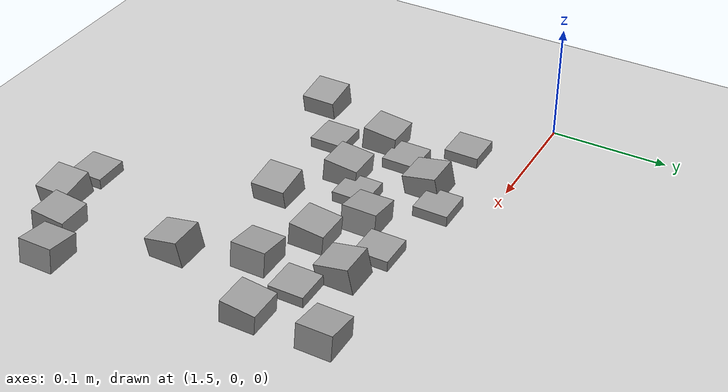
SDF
<sdf version="1.7">
 <world name="default">
  <model name="ground_plane">
   <static>1</static>
   <link name="link">
    <collision name="collision">
     <geometry><plane><normal>0 0 1</normal><size>100 100</size></plane></geometry>
     <surface><friction><ode><mu>100</mu><mu2>50</mu2></ode></friction></surface>
    </collision>
    <visual name="visual">
     <cast_shadows>0</cast_shadows>
     <geometry><plane><normal>0 0 1</normal><size>100 100</size></plane></geometry>
     <material>
      <script><uri>file://media/materials/scripts/gazebo.material</uri><name>Gazebo/Grey</name></script>
     </material>
    </visual>
   </link>
  </model>
  <model name="stone_road">
   <link name="link_0_clone_1">
    <inertial>
     <mass>1</mass>
     <inertia>
      <ixx>0.166667</ixx>
      <ixy>0</ixy>
      <ixz>0</ixz>
      <iyy>0.166667</iyy>
      <iyz>0</iyz>
      <izz>0.166667</izz>
     </inertia>
    </inertial>
    <pose>-0.022921 -0.129606 0.003778 0.2 -0 0</pose>
    <kinematic>1</kinematic>
    <visual name="visual">
     <geometry><box><size>0.03 0.03 0.03</size></box></geometry>
     <material>
      <lighting>1</lighting>
      <script><uri>file://media/materials/scripts/gazebo.material</uri><name>Gazebo/Grey</name></script>
      <shader type="pixel"><normal_map>__default__</normal_map></shader>
      <ambient>0.3 0.3 0.3 1</ambient>
      <diffuse>0.7 0.7 0.7 1</diffuse>
      <specular>0.01 0.01 0.01 1</specular>
      <emissive>0 0 0 1</emissive>
     </material>
    </visual>
    <collision name="collision">
     <geometry><box><size>0.03 0.03 0.03</size></box></geometry>
     <surface>
      <friction>
       <ode><mu>1</mu><mu2>1</mu2><fdir1>0 0 0</fdir1><slip1>0</slip1><slip2>0</slip2></ode>
       <torsional>
        <coefficient>1</coefficient>
        <patch_radius>0</patch_radius>
        <surface_radius>0</surface_radius>
        <use_patch_radius>1</use_patch_radius>
        <ode><slip>0</slip></ode>
       </torsional>
      </friction>
      <bounce><restitution_coefficient>0</restitution_coefficient><threshold>1e+06</threshold></bounce>
      <contact>
       <collide_without_contact>0</collide_without_contact>
       <collide_without_contact_bitmask>1</collide_without_contact_bitmask>
       <collide_bitmask>1</collide_bitmask>
       <ode>
        <soft_cfm>0</soft_cfm>
        <soft_erp>0.2</soft_erp>
        <kp>1e+13</kp>
        <kd>1</kd>
        <max_vel>0.01</max_vel>
        <min_depth>0</min_depth>
       </ode>
       <bullet>
        <split_impulse>1</split_impulse>
        <split_impulse_penetration_threshold>-0.01</split_impulse_penetration_threshold>
        <soft_cfm>0</soft_cfm>
        <soft_erp>0.2</soft_erp>
        <kp>1e+13</kp>
        <kd>1</kd>
       </bullet>
      </contact>
     </surface>
    </collision>
   </link>
   <link name="link_0_clone_12">
    <inertial>
     <mass>1</mass>
     <inertia>
      <ixx>0.166667</ixx>
      <ixy>0</ixy>
      <ixz>0</ixz>
      <iyy>0.166667</iyy>
      <iyz>0</iyz>
      <izz>0.166667</izz>
     </inertia>
    </inertial>
    <pose>0.142624 -0.262715 0.003778 0.2 -0 0</pose>
    <kinematic>1</kinematic>
    <visual name="visual">
     <geometry><box><size>0.03 0.03 0.03</size></box></geometry>
     <material>
      <lighting>1</lighting>
      <script><uri>file://media/materials/scripts/gazebo.material</uri><name>Gazebo/Grey</name></script>
      <shader type="pixel"><normal_map>__default__</normal_map></shader>
      <ambient>0.3 0.3 0.3 1</ambient>
      <diffuse>0.7 0.7 0.7 1</diffuse>
      <specular>0.01 0.01 0.01 1</specular>
      <emissive>0 0 0 1</emissive>
     </material>
    </visual>
    <collision name="collision">
     <geometry><box><size>0.03 0.03 0.03</size></box></geometry>
     <surface>
      <friction>
       <ode><mu>1</mu><mu2>1</mu2><fdir1>0 0 0</fdir1><slip1>0</slip1><slip2>0</slip2></ode>
       <torsional>
        <coefficient>1</coefficient>
        <patch_radius>0</patch_radius>
        <surface_radius>0</surface_radius>
        <use_patch_radius>1</use_patch_radius>
        <ode><slip>0</slip></ode>
       </torsional>
      </friction>
      <bounce><restitution_coefficient>0</restitution_coefficient><threshold>1e+06</threshold></bounce>
      <contact>
       <collide_without_contact>0</collide_without_contact>
       <collide_without_contact_bitmask>1</collide_without_contact_bitmask>
       <collide_bitmask>1</collide_bitmask>
       <ode>
        <soft_cfm>0</soft_cfm>
        <soft_erp>0.2</soft_erp>
        <kp>1e+13</kp>
        <kd>1</kd>
        <max_vel>0.01</max_vel>
        <min_depth>0</min_depth>
       </ode>
       <bullet>
        <split_impulse>1</split_impulse>
        <split_impulse_penetration_threshold>-0.01</split_impulse_penetration_threshold>
        <soft_cfm>0</soft_cfm>
        <soft_erp>0.2</soft_erp>
        <kp>1e+13</kp>
        <kd>1</kd>
       </bullet>
      </contact>
     </surface>
    </collision>
   </link>
   <link name="link_0_clone_13">
    <inertial>
     <mass>1</mass>
     <inertia>
      <ixx>0.166667</ixx>
      <ixy>0</ixy>
      <ixz>0</ixz>
      <iyy>0.166667</iyy>
      <iyz>0</iyz>
      <izz>0.166667</izz>
     </inertia>
    </inertial>
    <pose>0.107601 -0.134881 0.003778 0.2 -0 0</pose>
    <kinematic>1</kinematic>
    <visual name="visual">
     <geometry><box><size>0.03 0.03 0.03</size></box></geometry>
     <material>
      <lighting>1</lighting>
      <script><uri>file://media/materials/scripts/gazebo.material</uri><name>Gazebo/Grey</name></script>
      <shader type="pixel"><normal_map>__default__</normal_map></shader>
      <ambient>0.3 0.3 0.3 1</ambient>
      <diffuse>0.7 0.7 0.7 1</diffuse>
      <specular>0.01 0.01 0.01 1</specular>
      <emissive>0 0 0 1</emissive>
     </material>
    </visual>
    <collision name="collision">
     <geometry><box><size>0.03 0.03 0.03</size></box></geometry>
     <surface>
      <friction>
       <ode><mu>1</mu><mu2>1</mu2><fdir1>0 0 0</fdir1><slip1>0</slip1><slip2>0</slip2></ode>
       <torsional>
        <coefficient>1</coefficient>
        <patch_radius>0</patch_radius>
        <surface_radius>0</surface_radius>
        <use_patch_radius>1</use_patch_radius>
        <ode><slip>0</slip></ode>
       </torsional>
      </friction>
      <bounce><restitution_coefficient>0</restitution_coefficient><threshold>1e+06</threshold></bounce>
      <contact>
       <collide_without_contact>0</collide_without_contact>
       <collide_without_contact_bitmask>1</collide_without_contact_bitmask>
       <collide_bitmask>1</collide_bitmask>
       <ode>
        <soft_cfm>0</soft_cfm>
        <soft_erp>0.2</soft_erp>
        <kp>1e+13</kp>
        <kd>1</kd>
        <max_vel>0.01</max_vel>
        <min_depth>0</min_depth>
       </ode>
       <bullet>
        <split_impulse>1</split_impulse>
        <split_impulse_penetration_threshold>-0.01</split_impulse_penetration_threshold>
        <soft_cfm>0</soft_cfm>
        <soft_erp>0.2</soft_erp>
        <kp>1e+13</kp>
        <kd>1</kd>
       </bullet>
      </contact>
     </surface>
    </collision>
   </link>
   <link name="link_0_clone_2_clone_2_clone_13_clone_clone_10">
    <inertial>
     <mass>1</mass>
     <inertia>
      <ixx>0.166667</ixx>
      <ixy>0</ixy>
      <ixz>0</ixz>
      <iyy>0.166667</iyy>
      <iyz>0</iyz>
      <izz>0.166667</izz>
     </inertia>
    </inertial>
    <pose>-0.006825 -0.196489 0.003778 -0.1 0 0</pose>
    <kinematic>1</kinematic>
    <visual name="visual">
     <geometry><box><size>0.03 0.03 0.03</size></box></geometry>
     <material>
      <lighting>1</lighting>
      <script><uri>file://media/materials/scripts/gazebo.material</uri><name>Gazebo/Grey</name></script>
      <shader type="pixel"><normal_map>__default__</normal_map></shader>
      <ambient>0.3 0.3 0.3 1</ambient>
      <diffuse>0.7 0.7 0.7 1</diffuse>
      <specular>0.01 0.01 0.01 1</specular>
      <emissive>0 0 0 1</emissive>
     </material>
    </visual>
    <collision name="collision">
     <geometry><box><size>0.03 0.03 0.03</size></box></geometry>
     <surface>
      <friction>
       <ode><mu>1</mu><mu2>1</mu2><fdir1>0 0 0</fdir1><slip1>0</slip1><slip2>0</slip2></ode>
       <torsional>
        <coefficient>1</coefficient>
        <patch_radius>0</patch_radius>
        <surface_radius>0</surface_radius>
        <use_patch_radius>1</use_patch_radius>
        <ode><slip>0</slip></ode>
       </torsional>
      </friction>
      <bounce><restitution_coefficient>0</restitution_coefficient><threshold>1e+06</threshold></bounce>
      <contact>
       <collide_without_contact>0</collide_without_contact>
       <collide_without_contact_bitmask>1</collide_without_contact_bitmask>
       <collide_bitmask>1</collide_bitmask>
       <ode>
        <soft_cfm>0</soft_cfm>
        <soft_erp>0.2</soft_erp>
        <kp>1e+13</kp>
        <kd>1</kd>
        <max_vel>0.01</max_vel>
        <min_depth>0</min_depth>
       </ode>
       <bullet>
        <split_impulse>1</split_impulse>
        <split_impulse_penetration_threshold>-0.01</split_impulse_penetration_threshold>
        <soft_cfm>0</soft_cfm>
        <soft_erp>0.2</soft_erp>
        <kp>1e+13</kp>
        <kd>1</kd>
       </bullet>
      </contact>
     </surface>
    </collision>
   </link>
   <link name="link_0_clone_2_clone_2_clone_13_clone_clone_11">
    <inertial>
     <mass>1</mass>
     <inertia>
      <ixx>0.166667</ixx>
      <ixy>0</ixy>
      <ixz>0</ixz>
      <iyy>0.166667</iyy>
      <iyz>0</iyz>
      <izz>0.166667</izz>
     </inertia>
    </inertial>
    <pose>0.178889 -0.173779 0.003778 -0.1 0 0</pose>
    <kinematic>1</kinematic>
    <visual name="visual">
     <geometry><box><size>0.03 0.03 0.03</size></box></geometry>
     <material>
      <lighting>1</lighting>
      <script><uri>file://media/materials/scripts/gazebo.material</uri><name>Gazebo/Grey</name></script>
      <shader type="pixel"><normal_map>__default__</normal_map></shader>
      <ambient>0.3 0.3 0.3 1</ambient>
      <diffuse>0.7 0.7 0.7 1</diffuse>
      <specular>0.01 0.01 0.01 1</specular>
      <emissive>0 0 0 1</emissive>
     </material>
    </visual>
    <collision name="collision">
     <geometry><box><size>0.03 0.03 0.03</size></box></geometry>
     <surface>
      <friction>
       <ode><mu>1</mu><mu2>1</mu2><fdir1>0 0 0</fdir1><slip1>0</slip1><slip2>0</slip2></ode>
       <torsional>
        <coefficient>1</coefficient>
        <patch_radius>0</patch_radius>
        <surface_radius>0</surface_radius>
        <use_patch_radius>1</use_patch_radius>
        <ode><slip>0</slip></ode>
       </torsional>
      </friction>
      <bounce><restitution_coefficient>0</restitution_coefficient><threshold>1e+06</threshold></bounce>
      <contact>
       <collide_without_contact>0</collide_without_contact>
       <collide_without_contact_bitmask>1</collide_without_contact_bitmask>
       <collide_bitmask>1</collide_bitmask>
       <ode>
        <soft_cfm>0</soft_cfm>
        <soft_erp>0.2</soft_erp>
        <kp>1e+13</kp>
        <kd>1</kd>
        <max_vel>0.01</max_vel>
        <min_depth>0</min_depth>
       </ode>
       <bullet>
        <split_impulse>1</split_impulse>
        <split_impulse_penetration_threshold>-0.01</split_impulse_penetration_threshold>
        <soft_cfm>0</soft_cfm>
        <soft_erp>0.2</soft_erp>
        <kp>1e+13</kp>
        <kd>1</kd>
       </bullet>
      </contact>
     </surface>
    </collision>
   </link>
   <link name="link_0_clone_2_clone_2_clone_13_clone_clone_12">
    <inertial>
     <mass>1</mass>
     <inertia>
      <ixx>0.166667</ixx>
      <ixy>0</ixy>
      <ixz>0</ixz>
      <iyy>0.166667</iyy>
      <iyz>0</iyz>
      <izz>0.166667</izz>
     </inertia>
    </inertial>
    <pose>0.078701 -0.177208 0.003778 -0.1 0 0</pose>
    <kinematic>1</kinematic>
    <visual name="visual">
     <geometry><box><size>0.03 0.03 0.03</size></box></geometry>
     <material>
      <lighting>1</lighting>
      <script><uri>file://media/materials/scripts/gazebo.material</uri><name>Gazebo/Grey</name></script>
      <shader type="pixel"><normal_map>__default__</normal_map></shader>
      <ambient>0.3 0.3 0.3 1</ambient>
      <diffuse>0.7 0.7 0.7 1</diffuse>
      <specular>0.01 0.01 0.01 1</specular>
      <emissive>0 0 0 1</emissive>
     </material>
    </visual>
    <collision name="collision">
     <geometry><box><size>0.03 0.03 0.03</size></box></geometry>
     <surface>
      <friction>
       <ode><mu>1</mu><mu2>1</mu2><fdir1>0 0 0</fdir1><slip1>0</slip1><slip2>0</slip2></ode>
       <torsional>
        <coefficient>1</coefficient>
        <patch_radius>0</patch_radius>
        <surface_radius>0</surface_radius>
        <use_patch_radius>1</use_patch_radius>
        <ode><slip>0</slip></ode>
       </torsional>
      </friction>
      <bounce><restitution_coefficient>0</restitution_coefficient><threshold>1e+06</threshold></bounce>
      <contact>
       <collide_without_contact>0</collide_without_contact>
       <collide_without_contact_bitmask>1</collide_without_contact_bitmask>
       <collide_bitmask>1</collide_bitmask>
       <ode>
        <soft_cfm>0</soft_cfm>
        <soft_erp>0.2</soft_erp>
        <kp>1e+13</kp>
        <kd>1</kd>
        <max_vel>0.01</max_vel>
        <min_depth>0</min_depth>
       </ode>
       <bullet>
        <split_impulse>1</split_impulse>
        <split_impulse_penetration_threshold>-0.01</split_impulse_penetration_threshold>
        <soft_cfm>0</soft_cfm>
        <soft_erp>0.2</soft_erp>
        <kp>1e+13</kp>
        <kd>1</kd>
       </bullet>
      </contact>
     </surface>
    </collision>
   </link>
   <link name="link_0_clone_2_clone_2_clone_13_clone_clone_16_clone_16">
    <inertial>
     <mass>1</mass>
     <inertia>
      <ixx>0.166667</ixx>
      <ixy>0</ixy>
      <ixz>0</ixz>
      <iyy>0.166667</iyy>
      <iyz>0</iyz>
      <izz>0.166667</izz>
     </inertia>
    </inertial>
    <pose>0.071475 -0.124425 -0.006222 0 -0 0</pose>
    <kinematic>1</kinematic>
    <visual name="visual">
     <geometry><box><size>0.03 0.03 0.03</size></box></geometry>
     <material>
      <lighting>1</lighting>
      <script><uri>file://media/materials/scripts/gazebo.material</uri><name>Gazebo/Grey</name></script>
      <shader type="pixel"><normal_map>__default__</normal_map></shader>
      <ambient>0.3 0.3 0.3 1</ambient>
      <diffuse>0.7 0.7 0.7 1</diffuse>
      <specular>0.01 0.01 0.01 1</specular>
      <emissive>0 0 0 1</emissive>
     </material>
    </visual>
    <collision name="collision">
     <geometry><box><size>0.03 0.03 0.03</size></box></geometry>
     <surface>
      <friction>
       <ode><mu>1</mu><mu2>1</mu2><fdir1>0 0 0</fdir1><slip1>0</slip1><slip2>0</slip2></ode>
       <torsional>
        <coefficient>1</coefficient>
        <patch_radius>0</patch_radius>
        <surface_radius>0</surface_radius>
        <use_patch_radius>1</use_patch_radius>
        <ode><slip>0</slip></ode>
       </torsional>
      </friction>
      <bounce><restitution_coefficient>0</restitution_coefficient><threshold>1e+06</threshold></bounce>
      <contact>
       <collide_without_contact>0</collide_without_contact>
       <collide_without_contact_bitmask>1</collide_without_contact_bitmask>
       <collide_bitmask>1</collide_bitmask>
       <ode>
        <soft_cfm>0</soft_cfm>
        <soft_erp>0.2</soft_erp>
        <kp>1e+13</kp>
        <kd>1</kd>
        <max_vel>0.01</max_vel>
        <min_depth>0</min_depth>
       </ode>
       <bullet>
        <split_impulse>1</split_impulse>
        <split_impulse_penetration_threshold>-0.01</split_impulse_penetration_threshold>
        <soft_cfm>0</soft_cfm>
        <soft_erp>0.2</soft_erp>
        <kp>1e+13</kp>
        <kd>1</kd>
       </bullet>
      </contact>
     </surface>
    </collision>
   </link>
   <link name="link_0_clone_2_clone_2_clone_13_clone_clone_16_clone_17">
    <inertial>
     <mass>1</mass>
     <inertia>
      <ixx>0.166667</ixx>
      <ixy>0</ixy>
      <ixz>0</ixz>
      <iyy>0.166667</iyy>
      <iyz>0</iyz>
      <izz>0.166667</izz>
     </inertia>
    </inertial>
    <pose>0.014877 -0.175392 -0.006222 0 -0 0</pose>
    <kinematic>1</kinematic>
    <visual name="visual">
     <geometry><box><size>0.03 0.03 0.03</size></box></geometry>
     <material>
      <lighting>1</lighting>
      <script><uri>file://media/materials/scripts/gazebo.material</uri><name>Gazebo/Grey</name></script>
      <shader type="pixel"><normal_map>__default__</normal_map></shader>
      <ambient>0.3 0.3 0.3 1</ambient>
      <diffuse>0.7 0.7 0.7 1</diffuse>
      <specular>0.01 0.01 0.01 1</specular>
      <emissive>0 0 0 1</emissive>
     </material>
    </visual>
    <collision name="collision">
     <geometry><box><size>0.03 0.03 0.03</size></box></geometry>
     <surface>
      <friction>
       <ode><mu>1</mu><mu2>1</mu2><fdir1>0 0 0</fdir1><slip1>0</slip1><slip2>0</slip2></ode>
       <torsional>
        <coefficient>1</coefficient>
        <patch_radius>0</patch_radius>
        <surface_radius>0</surface_radius>
        <use_patch_radius>1</use_patch_radius>
        <ode><slip>0</slip></ode>
       </torsional>
      </friction>
      <bounce><restitution_coefficient>0</restitution_coefficient><threshold>1e+06</threshold></bounce>
      <contact>
       <collide_without_contact>0</collide_without_contact>
       <collide_without_contact_bitmask>1</collide_without_contact_bitmask>
       <collide_bitmask>1</collide_bitmask>
       <ode>
        <soft_cfm>0</soft_cfm>
        <soft_erp>0.2</soft_erp>
        <kp>1e+13</kp>
        <kd>1</kd>
        <max_vel>0.01</max_vel>
        <min_depth>0</min_depth>
       </ode>
       <bullet>
        <split_impulse>1</split_impulse>
        <split_impulse_penetration_threshold>-0.01</split_impulse_penetration_threshold>
        <soft_cfm>0</soft_cfm>
        <soft_erp>0.2</soft_erp>
        <kp>1e+13</kp>
        <kd>1</kd>
       </bullet>
      </contact>
     </surface>
    </collision>
   </link>
   <link name="link_0_clone_2_clone_2_clone_13_clone_clone_16_clone_18">
    <inertial>
     <mass>1</mass>
     <inertia>
      <ixx>0.166667</ixx>
      <ixy>0</ixy>
      <ixz>0</ixz>
      <iyy>0.166667</iyy>
      <iyz>0</iyz>
      <izz>0.166667</izz>
     </inertia>
    </inertial>
    <pose>0.137197 -0.158693 -0.006222 0 -0 0</pose>
    <kinematic>1</kinematic>
    <visual name="visual">
     <geometry><box><size>0.03 0.03 0.03</size></box></geometry>
     <material>
      <lighting>1</lighting>
      <script><uri>file://media/materials/scripts/gazebo.material</uri><name>Gazebo/Grey</name></script>
      <shader type="pixel"><normal_map>__default__</normal_map></shader>
      <ambient>0.3 0.3 0.3 1</ambient>
      <diffuse>0.7 0.7 0.7 1</diffuse>
      <specular>0.01 0.01 0.01 1</specular>
      <emissive>0 0 0 1</emissive>
     </material>
    </visual>
    <collision name="collision">
     <geometry><box><size>0.03 0.03 0.03</size></box></geometry>
     <surface>
      <friction>
       <ode><mu>1</mu><mu2>1</mu2><fdir1>0 0 0</fdir1><slip1>0</slip1><slip2>0</slip2></ode>
       <torsional>
        <coefficient>1</coefficient>
        <patch_radius>0</patch_radius>
        <surface_radius>0</surface_radius>
        <use_patch_radius>1</use_patch_radius>
        <ode><slip>0</slip></ode>
       </torsional>
      </friction>
      <bounce><restitution_coefficient>0</restitution_coefficient><threshold>1e+06</threshold></bounce>
      <contact>
       <collide_without_contact>0</collide_without_contact>
       <collide_without_contact_bitmask>1</collide_without_contact_bitmask>
       <collide_bitmask>1</collide_bitmask>
       <ode>
        <soft_cfm>0</soft_cfm>
        <soft_erp>0.2</soft_erp>
        <kp>1e+13</kp>
        <kd>1</kd>
        <max_vel>0.01</max_vel>
        <min_depth>0</min_depth>
       </ode>
       <bullet>
        <split_impulse>1</split_impulse>
        <split_impulse_penetration_threshold>-0.01</split_impulse_penetration_threshold>
        <soft_cfm>0</soft_cfm>
        <soft_erp>0.2</soft_erp>
        <kp>1e+13</kp>
        <kd>1</kd>
       </bullet>
      </contact>
     </surface>
    </collision>
   </link>
   <link name="link_0_clone_2_clone_2_clone_13_clone_clone_16_clone_29">
    <inertial>
     <mass>1</mass>
     <inertia>
      <ixx>0.166667</ixx>
      <ixy>0</ixy>
      <ixz>0</ixz>
      <iyy>0.166667</iyy>
      <iyz>0</iyz>
      <izz>0.166667</izz>
     </inertia>
    </inertial>
    <pose>-0.042964 -0.229632 -0.006222 0 -0 0</pose>
    <kinematic>1</kinematic>
    <visual name="visual">
     <geometry><box><size>0.03 0.03 0.03</size></box></geometry>
     <material>
      <lighting>1</lighting>
      <script><uri>file://media/materials/scripts/gazebo.material</uri><name>Gazebo/Grey</name></script>
      <shader type="pixel"><normal_map>__default__</normal_map></shader>
      <ambient>0.3 0.3 0.3 1</ambient>
      <diffuse>0.7 0.7 0.7 1</diffuse>
      <specular>0.01 0.01 0.01 1</specular>
      <emissive>0 0 0 1</emissive>
     </material>
    </visual>
    <collision name="collision">
     <geometry><box><size>0.03 0.03 0.03</size></box></geometry>
     <surface>
      <friction>
       <ode><mu>1</mu><mu2>1</mu2><fdir1>0 0 0</fdir1><slip1>0</slip1><slip2>0</slip2></ode>
       <torsional>
        <coefficient>1</coefficient>
        <patch_radius>0</patch_radius>
        <surface_radius>0</surface_radius>
        <use_patch_radius>1</use_patch_radius>
        <ode><slip>0</slip></ode>
       </torsional>
      </friction>
      <bounce><restitution_coefficient>0</restitution_coefficient><threshold>1e+06</threshold></bounce>
      <contact>
       <collide_without_contact>0</collide_without_contact>
       <collide_without_contact_bitmask>1</collide_without_contact_bitmask>
       <collide_bitmask>1</collide_bitmask>
       <ode>
        <soft_cfm>0</soft_cfm>
        <soft_erp>0.2</soft_erp>
        <kp>1e+13</kp>
        <kd>1</kd>
        <max_vel>0.01</max_vel>
        <min_depth>0</min_depth>
       </ode>
       <bullet>
        <split_impulse>1</split_impulse>
        <split_impulse_penetration_threshold>-0.01</split_impulse_penetration_threshold>
        <soft_cfm>0</soft_cfm>
        <soft_erp>0.2</soft_erp>
        <kp>1e+13</kp>
        <kd>1</kd>
       </bullet>
      </contact>
     </surface>
    </collision>
   </link>
   <link name="link_0_clone_2_clone_2_clone_13_clone_clone_16_clone_7">
    <inertial>
     <mass>1</mass>
     <inertia>
      <ixx>0.166667</ixx>
      <ixy>0</ixy>
      <ixz>0</ixz>
      <iyy>0.166667</iyy>
      <iyz>0</iyz>
      <izz>0.166667</izz>
     </inertia>
    </inertial>
    <pose>0.000883 -0.109959 -0.006222 0 -0 0</pose>
    <kinematic>1</kinematic>
    <visual name="visual">
     <geometry><box><size>0.03 0.03 0.03</size></box></geometry>
     <material>
      <lighting>1</lighting>
      <script><uri>file://media/materials/scripts/gazebo.material</uri><name>Gazebo/Grey</name></script>
      <shader type="pixel"><normal_map>__default__</normal_map></shader>
      <ambient>0.3 0.3 0.3 1</ambient>
      <diffuse>0.7 0.7 0.7 1</diffuse>
      <specular>0.01 0.01 0.01 1</specular>
      <emissive>0 0 0 1</emissive>
     </material>
    </visual>
    <collision name="collision">
     <geometry><box><size>0.03 0.03 0.03</size></box></geometry>
     <surface>
      <friction>
       <ode><mu>1</mu><mu2>1</mu2><fdir1>0 0 0</fdir1><slip1>0</slip1><slip2>0</slip2></ode>
       <torsional>
        <coefficient>1</coefficient>
        <patch_radius>0</patch_radius>
        <surface_radius>0</surface_radius>
        <use_patch_radius>1</use_patch_radius>
        <ode><slip>0</slip></ode>
       </torsional>
      </friction>
      <bounce><restitution_coefficient>0</restitution_coefficient><threshold>1e+06</threshold></bounce>
      <contact>
       <collide_without_contact>0</collide_without_contact>
       <collide_without_contact_bitmask>1</collide_without_contact_bitmask>
       <collide_bitmask>1</collide_bitmask>
       <ode>
        <soft_cfm>0</soft_cfm>
        <soft_erp>0.2</soft_erp>
        <kp>1e+13</kp>
        <kd>1</kd>
        <max_vel>0.01</max_vel>
        <min_depth>0</min_depth>
       </ode>
       <bullet>
        <split_impulse>1</split_impulse>
        <split_impulse_penetration_threshold>-0.01</split_impulse_penetration_threshold>
        <soft_cfm>0</soft_cfm>
        <soft_erp>0.2</soft_erp>
        <kp>1e+13</kp>
        <kd>1</kd>
       </bullet>
      </contact>
     </surface>
    </collision>
   </link>
   <link name="link_0_clone_2_clone_2_clone_13_clone_clone_16_clone_8">
    <inertial>
     <mass>1</mass>
     <inertia>
      <ixx>0.166667</ixx>
      <ixy>0</ixy>
      <ixz>0</ixz>
      <iyy>0.166667</iyy>
      <iyz>0</iyz>
      <izz>0.166667</izz>
     </inertia>
    </inertial>
    <pose>-0.045715 -0.162471 -0.006222 0 -0 0</pose>
    <kinematic>1</kinematic>
    <visual name="visual">
     <geometry><box><size>0.03 0.03 0.03</size></box></geometry>
     <material>
      <lighting>1</lighting>
      <script><uri>file://media/materials/scripts/gazebo.material</uri><name>Gazebo/Grey</name></script>
      <shader type="pixel"><normal_map>__default__</normal_map></shader>
      <ambient>0.3 0.3 0.3 1</ambient>
      <diffuse>0.7 0.7 0.7 1</diffuse>
      <specular>0.01 0.01 0.01 1</specular>
      <emissive>0 0 0 1</emissive>
     </material>
    </visual>
    <collision name="collision">
     <geometry><box><size>0.03 0.03 0.03</size></box></geometry>
     <surface>
      <friction>
       <ode><mu>1</mu><mu2>1</mu2><fdir1>0 0 0</fdir1><slip1>0</slip1><slip2>0</slip2></ode>
       <torsional>
        <coefficient>1</coefficient>
        <patch_radius>0</patch_radius>
        <surface_radius>0</surface_radius>
        <use_patch_radius>1</use_patch_radius>
        <ode><slip>0</slip></ode>
       </torsional>
      </friction>
      <bounce><restitution_coefficient>0</restitution_coefficient><threshold>1e+06</threshold></bounce>
      <contact>
       <collide_without_contact>0</collide_without_contact>
       <collide_without_contact_bitmask>1</collide_without_contact_bitmask>
       <collide_bitmask>1</collide_bitmask>
       <ode>
        <soft_cfm>0</soft_cfm>
        <soft_erp>0.2</soft_erp>
        <kp>1e+13</kp>
        <kd>1</kd>
        <max_vel>0.01</max_vel>
        <min_depth>0</min_depth>
       </ode>
       <bullet>
        <split_impulse>1</split_impulse>
        <split_impulse_penetration_threshold>-0.01</split_impulse_penetration_threshold>
        <soft_cfm>0</soft_cfm>
        <soft_erp>0.2</soft_erp>
        <kp>1e+13</kp>
        <kd>1</kd>
       </bullet>
      </contact>
     </surface>
    </collision>
   </link>
   <link name="link_0_clone_2_clone_2_clone_13_clone_clone_16_clone_9">
    <inertial>
     <mass>1</mass>
     <inertia>
      <ixx>0.166667</ixx>
      <ixy>0</ixy>
      <ixz>0</ixz>
      <iyy>0.166667</iyy>
      <iyz>0</iyz>
      <izz>0.166667</izz>
     </inertia>
    </inertial>
    <pose>-0.081689 -0.122641 -0.006222 0 -0 0</pose>
    <kinematic>1</kinematic>
    <visual name="visual">
     <geometry><box><size>0.03 0.03 0.03</size></box></geometry>
     <material>
      <lighting>1</lighting>
      <script><uri>file://media/materials/scripts/gazebo.material</uri><name>Gazebo/Grey</name></script>
      <shader type="pixel"><normal_map>__default__</normal_map></shader>
      <ambient>0.3 0.3 0.3 1</ambient>
      <diffuse>0.7 0.7 0.7 1</diffuse>
      <specular>0.01 0.01 0.01 1</specular>
      <emissive>0 0 0 1</emissive>
     </material>
    </visual>
    <collision name="collision">
     <geometry><box><size>0.03 0.03 0.03</size></box></geometry>
     <surface>
      <friction>
       <ode><mu>1</mu><mu2>1</mu2><fdir1>0 0 0</fdir1><slip1>0</slip1><slip2>0</slip2></ode>
       <torsional>
        <coefficient>1</coefficient>
        <patch_radius>0</patch_radius>
        <surface_radius>0</surface_radius>
        <use_patch_radius>1</use_patch_radius>
        <ode><slip>0</slip></ode>
       </torsional>
      </friction>
      <bounce><restitution_coefficient>0</restitution_coefficient><threshold>1e+06</threshold></bounce>
      <contact>
       <collide_without_contact>0</collide_without_contact>
       <collide_without_contact_bitmask>1</collide_without_contact_bitmask>
       <collide_bitmask>1</collide_bitmask>
       <ode>
        <soft_cfm>0</soft_cfm>
        <soft_erp>0.2</soft_erp>
        <kp>1e+13</kp>
        <kd>1</kd>
        <max_vel>0.01</max_vel>
        <min_depth>0</min_depth>
       </ode>
       <bullet>
        <split_impulse>1</split_impulse>
        <split_impulse_penetration_threshold>-0.01</split_impulse_penetration_threshold>
        <soft_cfm>0</soft_cfm>
        <soft_erp>0.2</soft_erp>
        <kp>1e+13</kp>
        <kd>1</kd>
       </bullet>
      </contact>
     </surface>
    </collision>
   </link>
   <link name="link_0_clone_2_clone_2_clone_13_clone_clone_9">
    <inertial>
     <mass>1</mass>
     <inertia>
      <ixx>0.166667</ixx>
      <ixy>0</ixy>
      <ixz>0</ixz>
      <iyy>0.166667</iyy>
      <iyz>0</iyz>
      <izz>0.166667</izz>
     </inertia>
    </inertial>
    <pose>-0.062692 -0.190617 0.003778 -0.1 0 0</pose>
    <kinematic>1</kinematic>
    <visual name="visual">
     <geometry><box><size>0.03 0.03 0.03</size></box></geometry>
     <material>
      <lighting>1</lighting>
      <script><uri>file://media/materials/scripts/gazebo.material</uri><name>Gazebo/Grey</name></script>
      <shader type="pixel"><normal_map>__default__</normal_map></shader>
      <ambient>0.3 0.3 0.3 1</ambient>
      <diffuse>0.7 0.7 0.7 1</diffuse>
      <specular>0.01 0.01 0.01 1</specular>
      <emissive>0 0 0 1</emissive>
     </material>
    </visual>
    <collision name="collision">
     <geometry><box><size>0.03 0.03 0.03</size></box></geometry>
     <surface>
      <friction>
       <ode><mu>1</mu><mu2>1</mu2><fdir1>0 0 0</fdir1><slip1>0</slip1><slip2>0</slip2></ode>
       <torsional>
        <coefficient>1</coefficient>
        <patch_radius>0</patch_radius>
        <surface_radius>0</surface_radius>
        <use_patch_radius>1</use_patch_radius>
        <ode><slip>0</slip></ode>
       </torsional>
      </friction>
      <bounce><restitution_coefficient>0</restitution_coefficient><threshold>1e+06</threshold></bounce>
      <contact>
       <collide_without_contact>0</collide_without_contact>
       <collide_without_contact_bitmask>1</collide_without_contact_bitmask>
       <collide_bitmask>1</collide_bitmask>
       <ode>
        <soft_cfm>0</soft_cfm>
        <soft_erp>0.2</soft_erp>
        <kp>1e+13</kp>
        <kd>1</kd>
        <max_vel>0.01</max_vel>
        <min_depth>0</min_depth>
       </ode>
       <bullet>
        <split_impulse>1</split_impulse>
        <split_impulse_penetration_threshold>-0.01</split_impulse_penetration_threshold>
        <soft_cfm>0</soft_cfm>
        <soft_erp>0.2</soft_erp>
        <kp>1e+13</kp>
        <kd>1</kd>
       </bullet>
      </contact>
     </surface>
    </collision>
   </link>
   <link name="link_0_clone_2_clone_2_clone_4">
    <inertial>
     <mass>1</mass>
     <inertia>
      <ixx>0.166667</ixx>
      <ixy>0</ixy>
      <ixz>0</ixz>
      <iyy>0.166667</iyy>
      <iyz>0</iyz>
      <izz>0.166667</izz>
     </inertia>
    </inertial>
    <pose>0.042048 -0.151731 0.003778 0 -0.15 0</pose>
    <kinematic>1</kinematic>
    <visual name="visual">
     <geometry><box><size>0.03 0.03 0.03</size></box></geometry>
     <material>
      <lighting>1</lighting>
      <script><uri>file://media/materials/scripts/gazebo.material</uri><name>Gazebo/Grey</name></script>
      <shader type="pixel"><normal_map>__default__</normal_map></shader>
      <ambient>0.3 0.3 0.3 1</ambient>
      <diffuse>0.7 0.7 0.7 1</diffuse>
      <specular>0.01 0.01 0.01 1</specular>
      <emissive>0 0 0 1</emissive>
     </material>
    </visual>
    <collision name="collision">
     <geometry><box><size>0.03 0.03 0.03</size></box></geometry>
     <surface>
      <friction>
       <ode><mu>1</mu><mu2>1</mu2><fdir1>0 0 0</fdir1><slip1>0</slip1><slip2>0</slip2></ode>
       <torsional>
        <coefficient>1</coefficient>
        <patch_radius>0</patch_radius>
        <surface_radius>0</surface_radius>
        <use_patch_radius>1</use_patch_radius>
        <ode><slip>0</slip></ode>
       </torsional>
      </friction>
      <bounce><restitution_coefficient>0</restitution_coefficient><threshold>1e+06</threshold></bounce>
      <contact>
       <collide_without_contact>0</collide_without_contact>
       <collide_without_contact_bitmask>1</collide_without_contact_bitmask>
       <collide_bitmask>1</collide_bitmask>
       <ode>
        <soft_cfm>0</soft_cfm>
        <soft_erp>0.2</soft_erp>
        <kp>1e+13</kp>
        <kd>1</kd>
        <max_vel>0.01</max_vel>
        <min_depth>0</min_depth>
       </ode>
       <bullet>
        <split_impulse>1</split_impulse>
        <split_impulse_penetration_threshold>-0.01</split_impulse_penetration_threshold>
        <soft_cfm>0</soft_cfm>
        <soft_erp>0.2</soft_erp>
        <kp>1e+13</kp>
        <kd>1</kd>
       </bullet>
      </contact>
     </surface>
    </collision>
   </link>
   <link name="link_0_clone_2_clone_2_clone_7">
    <inertial>
     <mass>1</mass>
     <inertia>
      <ixx>0.166667</ixx>
      <ixy>0</ixy>
      <ixz>0</ixz>
      <iyy>0.166667</iyy>
      <iyz>0</iyz>
      <izz>0.166667</izz>
     </inertia>
    </inertial>
    <pose>0.175499 -0.112442 0.003778 0 -0.15 0</pose>
    <kinematic>1</kinematic>
    <visual name="visual">
     <geometry><box><size>0.03 0.03 0.03</size></box></geometry>
     <material>
      <lighting>1</lighting>
      <script><uri>file://media/materials/scripts/gazebo.material</uri><name>Gazebo/Grey</name></script>
      <shader type="pixel"><normal_map>__default__</normal_map></shader>
      <ambient>0.3 0.3 0.3 1</ambient>
      <diffuse>0.7 0.7 0.7 1</diffuse>
      <specular>0.01 0.01 0.01 1</specular>
      <emissive>0 0 0 1</emissive>
     </material>
    </visual>
    <collision name="collision">
     <geometry><box><size>0.03 0.03 0.03</size></box></geometry>
     <surface>
      <friction>
       <ode><mu>1</mu><mu2>1</mu2><fdir1>0 0 0</fdir1><slip1>0</slip1><slip2>0</slip2></ode>
       <torsional>
        <coefficient>1</coefficient>
        <patch_radius>0</patch_radius>
        <surface_radius>0</surface_radius>
        <use_patch_radius>1</use_patch_radius>
        <ode><slip>0</slip></ode>
       </torsional>
      </friction>
      <bounce><restitution_coefficient>0</restitution_coefficient><threshold>1e+06</threshold></bounce>
      <contact>
       <collide_without_contact>0</collide_without_contact>
       <collide_without_contact_bitmask>1</collide_without_contact_bitmask>
       <collide_bitmask>1</collide_bitmask>
       <ode>
        <soft_cfm>0</soft_cfm>
        <soft_erp>0.2</soft_erp>
        <kp>1e+13</kp>
        <kd>1</kd>
        <max_vel>0.01</max_vel>
        <min_depth>0</min_depth>
       </ode>
       <bullet>
        <split_impulse>1</split_impulse>
        <split_impulse_penetration_threshold>-0.01</split_impulse_penetration_threshold>
        <soft_cfm>0</soft_cfm>
        <soft_erp>0.2</soft_erp>
        <kp>1e+13</kp>
        <kd>1</kd>
       </bullet>
      </contact>
     </surface>
    </collision>
   </link>
   <link name="link_0_clone_2_clone_2_clone_8">
    <inertial>
     <mass>1</mass>
     <inertia>
      <ixx>0.166667</ixx>
      <ixy>0</ixy>
      <ixz>0</ixz>
      <iyy>0.166667</iyy>
      <iyz>0</iyz>
      <izz>0.166667</izz>
     </inertia>
    </inertial>
    <pose>0.122141 -0.201696 0.003778 0 -0.15 0</pose>
    <kinematic>1</kinematic>
    <visual name="visual">
     <geometry><box><size>0.03 0.03 0.03</size></box></geometry>
     <material>
      <lighting>1</lighting>
      <script><uri>file://media/materials/scripts/gazebo.material</uri><name>Gazebo/Grey</name></script>
      <shader type="pixel"><normal_map>__default__</normal_map></shader>
      <ambient>0.3 0.3 0.3 1</ambient>
      <diffuse>0.7 0.7 0.7 1</diffuse>
      <specular>0.01 0.01 0.01 1</specular>
      <emissive>0 0 0 1</emissive>
     </material>
    </visual>
    <collision name="collision">
     <geometry><box><size>0.03 0.03 0.03</size></box></geometry>
     <surface>
      <friction>
       <ode><mu>1</mu><mu2>1</mu2><fdir1>0 0 0</fdir1><slip1>0</slip1><slip2>0</slip2></ode>
       <torsional>
        <coefficient>1</coefficient>
        <patch_radius>0</patch_radius>
        <surface_radius>0</surface_radius>
        <use_patch_radius>1</use_patch_radius>
        <ode><slip>0</slip></ode>
       </torsional>
      </friction>
      <bounce><restitution_coefficient>0</restitution_coefficient><threshold>1e+06</threshold></bounce>
      <contact>
       <collide_without_contact>0</collide_without_contact>
       <collide_without_contact_bitmask>1</collide_without_contact_bitmask>
       <collide_bitmask>1</collide_bitmask>
       <ode>
        <soft_cfm>0</soft_cfm>
        <soft_erp>0.2</soft_erp>
        <kp>1e+13</kp>
        <kd>1</kd>
        <max_vel>0.01</max_vel>
        <min_depth>0</min_depth>
       </ode>
       <bullet>
        <split_impulse>1</split_impulse>
        <split_impulse_penetration_threshold>-0.01</split_impulse_penetration_threshold>
        <soft_cfm>0</soft_cfm>
        <soft_erp>0.2</soft_erp>
        <kp>1e+13</kp>
        <kd>1</kd>
       </bullet>
      </contact>
     </surface>
    </collision>
   </link>
   <link name="link_0_clone_2_clone_6">
    <inertial>
     <mass>1</mass>
     <inertia>
      <ixx>0.166667</ixx>
      <ixy>0</ixy>
      <ixz>0</ixz>
      <iyy>0.166667</iyy>
      <iyz>0</iyz>
      <izz>0.166667</izz>
     </inertia>
    </inertial>
    <pose>-0.087859 -0.263184 0.003778 0 0.15 0</pose>
    <kinematic>1</kinematic>
    <visual name="visual">
     <geometry><box><size>0.03 0.03 0.03</size></box></geometry>
     <material>
      <lighting>1</lighting>
      <script><uri>file://media/materials/scripts/gazebo.material</uri><name>Gazebo/Grey</name></script>
      <shader type="pixel"><normal_map>__default__</normal_map></shader>
      <ambient>0.3 0.3 0.3 1</ambient>
      <diffuse>0.7 0.7 0.7 1</diffuse>
      <specular>0.01 0.01 0.01 1</specular>
      <emissive>0 0 0 1</emissive>
     </material>
    </visual>
    <collision name="collision">
     <geometry><box><size>0.03 0.03 0.03</size></box></geometry>
     <surface>
      <friction>
       <ode><mu>1</mu><mu2>1</mu2><fdir1>0 0 0</fdir1><slip1>0</slip1><slip2>0</slip2></ode>
       <torsional>
        <coefficient>1</coefficient>
        <patch_radius>0</patch_radius>
        <surface_radius>0</surface_radius>
        <use_patch_radius>1</use_patch_radius>
        <ode><slip>0</slip></ode>
       </torsional>
      </friction>
      <bounce><restitution_coefficient>0</restitution_coefficient><threshold>1e+06</threshold></bounce>
      <contact>
       <collide_without_contact>0</collide_without_contact>
       <collide_without_contact_bitmask>1</collide_without_contact_bitmask>
       <collide_bitmask>1</collide_bitmask>
       <ode>
        <soft_cfm>0</soft_cfm>
        <soft_erp>0.2</soft_erp>
        <kp>1e+13</kp>
        <kd>1</kd>
        <max_vel>0.01</max_vel>
        <min_depth>0</min_depth>
       </ode>
       <bullet>
        <split_impulse>1</split_impulse>
        <split_impulse_penetration_threshold>-0.01</split_impulse_penetration_threshold>
        <soft_cfm>0</soft_cfm>
        <soft_erp>0.2</soft_erp>
        <kp>1e+13</kp>
        <kd>1</kd>
       </bullet>
      </contact>
     </surface>
    </collision>
   </link>
   <link name="link_0_clone_2_clone_7">
    <inertial>
     <mass>1</mass>
     <inertia>
      <ixx>0.166667</ixx>
      <ixy>0</ixy>
      <ixz>0</ixz>
      <iyy>0.166667</iyy>
      <iyz>0</iyz>
      <izz>0.166667</izz>
     </inertia>
    </inertial>
    <pose>0.04255 -0.232691 0.003778 0 0.15 0</pose>
    <kinematic>1</kinematic>
    <visual name="visual">
     <geometry><box><size>0.03 0.03 0.03</size></box></geometry>
     <material>
      <lighting>1</lighting>
      <script><uri>file://media/materials/scripts/gazebo.material</uri><name>Gazebo/Grey</name></script>
      <shader type="pixel"><normal_map>__default__</normal_map></shader>
      <ambient>0.3 0.3 0.3 1</ambient>
      <diffuse>0.7 0.7 0.7 1</diffuse>
      <specular>0.01 0.01 0.01 1</specular>
      <emissive>0 0 0 1</emissive>
     </material>
    </visual>
    <collision name="collision">
     <geometry><box><size>0.03 0.03 0.03</size></box></geometry>
     <surface>
      <friction>
       <ode><mu>1</mu><mu2>1</mu2><fdir1>0 0 0</fdir1><slip1>0</slip1><slip2>0</slip2></ode>
       <torsional>
        <coefficient>1</coefficient>
        <patch_radius>0</patch_radius>
        <surface_radius>0</surface_radius>
        <use_patch_radius>1</use_patch_radius>
        <ode><slip>0</slip></ode>
       </torsional>
      </friction>
      <bounce><restitution_coefficient>0</restitution_coefficient><threshold>1e+06</threshold></bounce>
      <contact>
       <collide_without_contact>0</collide_without_contact>
       <collide_without_contact_bitmask>1</collide_without_contact_bitmask>
       <collide_bitmask>1</collide_bitmask>
       <ode>
        <soft_cfm>0</soft_cfm>
        <soft_erp>0.2</soft_erp>
        <kp>1e+13</kp>
        <kd>1</kd>
        <max_vel>0.01</max_vel>
        <min_depth>0</min_depth>
       </ode>
       <bullet>
        <split_impulse>1</split_impulse>
        <split_impulse_penetration_threshold>-0.01</split_impulse_penetration_threshold>
        <soft_cfm>0</soft_cfm>
        <soft_erp>0.2</soft_erp>
        <kp>1e+13</kp>
        <kd>1</kd>
       </bullet>
      </contact>
     </surface>
    </collision>
   </link>
   <static>0</static>
   <pose>1.64646 0.071889 -0 0 -0 0</pose>
  </model>
  <model name="stone_road_2">
   <link name="link_0_clone_2_clone_2_clone_11">
    <inertial>
     <mass>1</mass>
     <inertia>
      <ixx>0.166667</ixx>
      <ixy>0</ixy>
      <ixz>0</ixz>
      <iyy>0.166667</iyy>
      <iyz>0</iyz>
      <izz>0.166667</izz>
     </inertia>
    </inertial>
    <pose>-0.050382 0.216558 0.003778 0 -0.15 0</pose>
    <kinematic>1</kinematic>
    <visual name="visual">
     <geometry><box><size>0.03 0.03 0.03</size></box></geometry>
     <material>
      <lighting>1</lighting>
      <script><uri>file://media/materials/scripts/gazebo.material</uri><name>Gazebo/Grey</name></script>
      <shader type="pixel"><normal_map>__default__</normal_map></shader>
      <ambient>0.3 0.3 0.3 1</ambient>
      <diffuse>0.7 0.7 0.7 1</diffuse>
      <specular>0.01 0.01 0.01 1</specular>
      <emissive>0 0 0 1</emissive>
     </material>
    </visual>
    <collision name="collision">
     <geometry><box><size>0.03 0.03 0.03</size></box></geometry>
     <surface>
      <friction>
       <ode><mu>1</mu><mu2>1</mu2><fdir1>0 0 0</fdir1><slip1>0</slip1><slip2>0</slip2></ode>
       <torsional>
        <coefficient>1</coefficient>
        <patch_radius>0</patch_radius>
        <surface_radius>0</surface_radius>
        <use_patch_radius>1</use_patch_radius>
        <ode><slip>0</slip></ode>
       </torsional>
      </friction>
      <bounce><restitution_coefficient>0</restitution_coefficient><threshold>1e+06</threshold></bounce>
      <contact>
       <collide_without_contact>0</collide_without_contact>
       <collide_without_contact_bitmask>1</collide_without_contact_bitmask>
       <collide_bitmask>1</collide_bitmask>
       <ode>
        <soft_cfm>0</soft_cfm>
        <soft_erp>0.2</soft_erp>
        <kp>1e+13</kp>
        <kd>1</kd>
        <max_vel>0.01</max_vel>
        <min_depth>0</min_depth>
       </ode>
       <bullet>
        <split_impulse>1</split_impulse>
        <split_impulse_penetration_threshold>-0.01</split_impulse_penetration_threshold>
        <soft_cfm>0</soft_cfm>
        <soft_erp>0.2</soft_erp>
        <kp>1e+13</kp>
        <kd>1</kd>
       </bullet>
      </contact>
     </surface>
    </collision>
   </link>
   <link name="link_0_clone_2_clone_2_clone_13_clone_clone_15">
    <inertial>
     <mass>1</mass>
     <inertia>
      <ixx>0.166667</ixx>
      <ixy>0</ixy>
      <ixz>0</ixz>
      <iyy>0.166667</iyy>
      <iyz>0</iyz>
      <izz>0.166667</izz>
     </inertia>
    </inertial>
    <pose>-0.084893 0.19984 0.003778 -0.1 0 0</pose>
    <kinematic>1</kinematic>
    <visual name="visual">
     <geometry><box><size>0.03 0.03 0.03</size></box></geometry>
     <material>
      <lighting>1</lighting>
      <script><uri>file://media/materials/scripts/gazebo.material</uri><name>Gazebo/Grey</name></script>
      <shader type="pixel"><normal_map>__default__</normal_map></shader>
      <ambient>0.3 0.3 0.3 1</ambient>
      <diffuse>0.7 0.7 0.7 1</diffuse>
      <specular>0.01 0.01 0.01 1</specular>
      <emissive>0 0 0 1</emissive>
     </material>
    </visual>
    <collision name="collision">
     <geometry><box><size>0.03 0.03 0.03</size></box></geometry>
     <surface>
      <friction>
       <ode><mu>1</mu><mu2>1</mu2><fdir1>0 0 0</fdir1><slip1>0</slip1><slip2>0</slip2></ode>
       <torsional>
        <coefficient>1</coefficient>
        <patch_radius>0</patch_radius>
        <surface_radius>0</surface_radius>
        <use_patch_radius>1</use_patch_radius>
        <ode><slip>0</slip></ode>
       </torsional>
      </friction>
      <bounce><restitution_coefficient>0</restitution_coefficient><threshold>1e+06</threshold></bounce>
      <contact>
       <collide_without_contact>0</collide_without_contact>
       <collide_without_contact_bitmask>1</collide_without_contact_bitmask>
       <collide_bitmask>1</collide_bitmask>
       <ode>
        <soft_cfm>0</soft_cfm>
        <soft_erp>0.2</soft_erp>
        <kp>1e+13</kp>
        <kd>1</kd>
        <max_vel>0.01</max_vel>
        <min_depth>0</min_depth>
       </ode>
       <bullet>
        <split_impulse>1</split_impulse>
        <split_impulse_penetration_threshold>-0.01</split_impulse_penetration_threshold>
        <soft_cfm>0</soft_cfm>
        <soft_erp>0.2</soft_erp>
        <kp>1e+13</kp>
        <kd>1</kd>
       </bullet>
      </contact>
     </surface>
    </collision>
   </link>
   <link name="link_0_clone_2_clone_2_clone_13_clone_clone_16_clone_25">
    <inertial>
     <mass>1</mass>
     <inertia>
      <ixx>0.166667</ixx>
      <ixy>0</ixy>
      <ixz>0</ixz>
      <iyy>0.166667</iyy>
      <iyz>0</iyz>
      <izz>0.166667</izz>
     </inertia>
    </inertial>
    <pose>-0.15326 0.182661 -0.006222 0 -0 0</pose>
    <kinematic>1</kinematic>
    <visual name="visual">
     <geometry><box><size>0.03 0.03 0.03</size></box></geometry>
     <material>
      <lighting>1</lighting>
      <script><uri>file://media/materials/scripts/gazebo.material</uri><name>Gazebo/Grey</name></script>
      <shader type="pixel"><normal_map>__default__</normal_map></shader>
      <ambient>0.3 0.3 0.3 1</ambient>
      <diffuse>0.7 0.7 0.7 1</diffuse>
      <specular>0.01 0.01 0.01 1</specular>
      <emissive>0 0 0 1</emissive>
     </material>
    </visual>
    <collision name="collision">
     <geometry><box><size>0.03 0.03 0.03</size></box></geometry>
     <surface>
      <friction>
       <ode><mu>1</mu><mu2>1</mu2><fdir1>0 0 0</fdir1><slip1>0</slip1><slip2>0</slip2></ode>
       <torsional>
        <coefficient>1</coefficient>
        <patch_radius>0</patch_radius>
        <surface_radius>0</surface_radius>
        <use_patch_radius>1</use_patch_radius>
        <ode><slip>0</slip></ode>
       </torsional>
      </friction>
      <bounce><restitution_coefficient>0</restitution_coefficient><threshold>1e+06</threshold></bounce>
      <contact>
       <collide_without_contact>0</collide_without_contact>
       <collide_without_contact_bitmask>1</collide_without_contact_bitmask>
       <collide_bitmask>1</collide_bitmask>
       <ode>
        <soft_cfm>0</soft_cfm>
        <soft_erp>0.2</soft_erp>
        <kp>1e+13</kp>
        <kd>1</kd>
        <max_vel>0.01</max_vel>
        <min_depth>0</min_depth>
       </ode>
       <bullet>
        <split_impulse>1</split_impulse>
        <split_impulse_penetration_threshold>-0.01</split_impulse_penetration_threshold>
        <soft_cfm>0</soft_cfm>
        <soft_erp>0.2</soft_erp>
        <kp>1e+13</kp>
        <kd>1</kd>
       </bullet>
      </contact>
     </surface>
    </collision>
   </link>
   <link name="link_0_clone_2_clone_4">
    <inertial>
     <mass>1</mass>
     <inertia>
      <ixx>0.166667</ixx>
      <ixy>0</ixy>
      <ixz>0</ixz>
      <iyy>0.166667</iyy>
      <iyz>0</iyz>
      <izz>0.166667</izz>
     </inertia>
    </inertial>
    <pose>-0.117313 0.179399 0.003778 0 0.15 0</pose>
    <kinematic>1</kinematic>
    <visual name="visual">
     <geometry><box><size>0.03 0.03 0.03</size></box></geometry>
     <material>
      <lighting>1</lighting>
      <script><uri>file://media/materials/scripts/gazebo.material</uri><name>Gazebo/Grey</name></script>
      <shader type="pixel"><normal_map>__default__</normal_map></shader>
      <ambient>0.3 0.3 0.3 1</ambient>
      <diffuse>0.7 0.7 0.7 1</diffuse>
      <specular>0.01 0.01 0.01 1</specular>
      <emissive>0 0 0 1</emissive>
     </material>
    </visual>
    <collision name="collision">
     <geometry><box><size>0.03 0.03 0.03</size></box></geometry>
     <surface>
      <friction>
       <ode><mu>1</mu><mu2>1</mu2><fdir1>0 0 0</fdir1><slip1>0</slip1><slip2>0</slip2></ode>
       <torsional>
        <coefficient>1</coefficient>
        <patch_radius>0</patch_radius>
        <surface_radius>0</surface_radius>
        <use_patch_radius>1</use_patch_radius>
        <ode><slip>0</slip></ode>
       </torsional>
      </friction>
      <bounce><restitution_coefficient>0</restitution_coefficient><threshold>1e+06</threshold></bounce>
      <contact>
       <collide_without_contact>0</collide_without_contact>
       <collide_without_contact_bitmask>1</collide_without_contact_bitmask>
       <collide_bitmask>1</collide_bitmask>
       <ode>
        <soft_cfm>0</soft_cfm>
        <soft_erp>0.2</soft_erp>
        <kp>1e+13</kp>
        <kd>1</kd>
        <max_vel>0.01</max_vel>
        <min_depth>0</min_depth>
       </ode>
       <bullet>
        <split_impulse>1</split_impulse>
        <split_impulse_penetration_threshold>-0.01</split_impulse_penetration_threshold>
        <soft_cfm>0</soft_cfm>
        <soft_erp>0.2</soft_erp>
        <kp>1e+13</kp>
        <kd>1</kd>
       </bullet>
      </contact>
     </surface>
    </collision>
   </link>
   <static>0</static>
   <pose>1.89226 -0.488312 -0 0 -0 0</pose>
  </model>
 </world>
</sdf>
